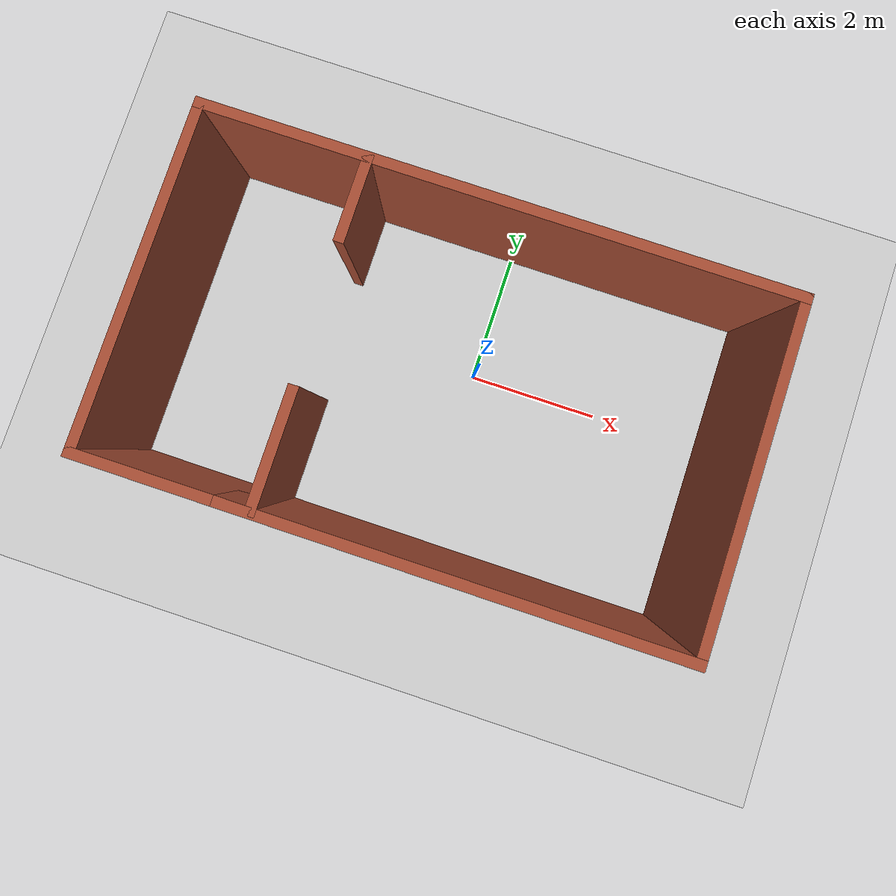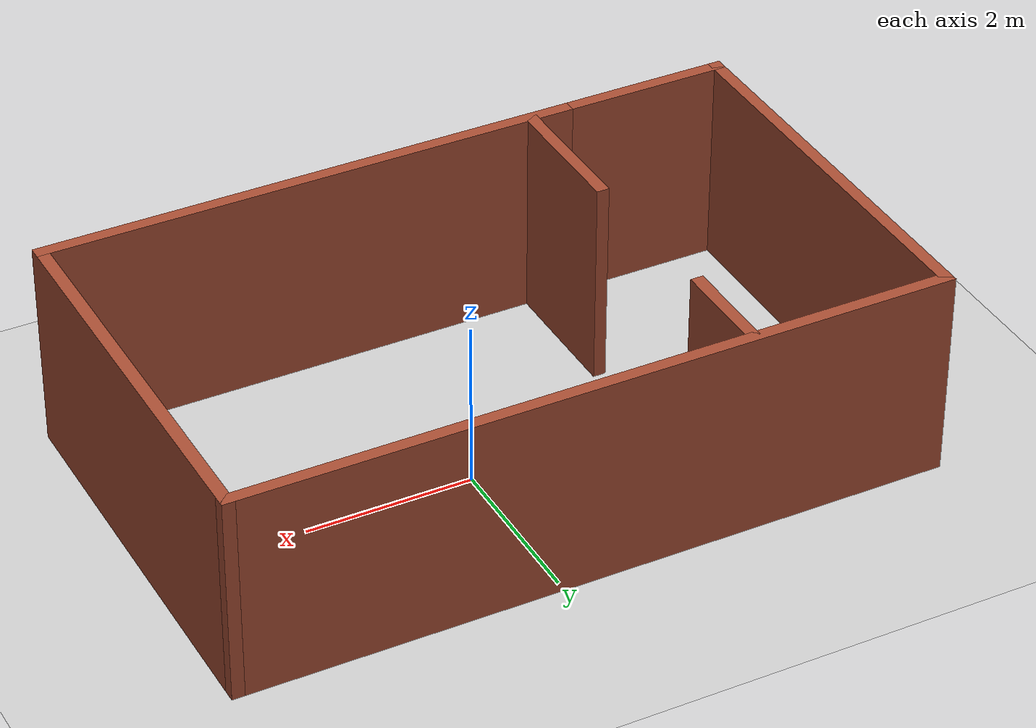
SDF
<sdf version="1.7">
 <world name="default">
  <light name="sun" type="directional">
   <pose>0 0 10 0 -0 0</pose>
   <diffuse>0.8 0.8 0.8 1</diffuse>
   <specular>0.2 0.2 0.2 1</specular>
   <attenuation>
    <range>1000</range>
    <constant>0.9</constant>
    <linear>0.01</linear>
    <quadratic>0.001</quadratic>
   </attenuation>
   <direction>-0.5 0.1 -0.9</direction>
   <spot><inner_angle>0</inner_angle><outer_angle>0</outer_angle><falloff>0</falloff></spot>
  </light>
  <model name="ground_plane">
   <static>1</static>
   <link name="link">
    <collision name="collision">
     <geometry><plane><normal>0 0 1</normal><size>100 100</size></plane></geometry>
     <surface>
      <contact><collide_bitmask>65535</collide_bitmask></contact>
      <friction><ode><mu>100</mu><mu2>50</mu2></ode></friction>
     </surface>
    </collision>
    <visual name="visual">
     <cast_shadows>0</cast_shadows>
     <geometry><plane><normal>0 0 1</normal><size>100 100</size></plane></geometry>
     <material>
      <script><uri>file://media/materials/scripts/gazebo.material</uri><name>Gazebo/Grey</name></script>
     </material>
    </visual>
   </link>
  </model>
  <gravity>0 0 -9.8</gravity>
  <magnetic_field>6e-06 2.3e-05 -4.2e-05</magnetic_field>
  <atmosphere type="adiabatic"/>
  <physics type="ode">
   <max_step_size>0.001</max_step_size>
   <real_time_factor>1</real_time_factor>
   <real_time_update_rate>1000</real_time_update_rate>
  </physics>
  <scene><ambient>0.4 0.4 0.4 1</ambient><background>0.7 0.7 0.7 1</background><shadows>1</shadows></scene>
  <spherical_coordinates>
   <surface_model>EARTH_WGS84</surface_model>
   <latitude_deg>0</latitude_deg>
   <longitude_deg>0</longitude_deg>
   <elevation>0</elevation>
   <heading_deg>0</heading_deg>
  </spherical_coordinates>
  <model name="aspirante_test2">
   <pose>-0.425 -0.355 0 0 -0 0</pose>
   <link name="Wall_10">
    <collision name="Wall_10_Collision">
     <geometry><box><size>2.15 0.15 2.5</size></box></geometry>
     <pose>0 0 1.25 0 -0 0</pose>
    </collision>
    <visual name="Wall_10_Visual">
     <pose>0 0 1.25 0 -0 0</pose>
     <geometry><box><size>2.15 0.15 2.5</size></box></geometry>
     <material>
      <script><uri>file://media/materials/scripts/gazebo.material</uri><name>Gazebo/Bricks</name></script>
      <ambient>1 1 1 1</ambient>
     </material>
     <meta><layer>0</layer></meta>
    </visual>
    <pose>-3.175 -2.425 0 0 -0 0</pose>
   </link>
   <link name="Wall_12">
    <collision name="Wall_12_Collision">
     <geometry><box><size>1.75 0.15 2.5</size></box></geometry>
     <pose>0 0 1.25 0 -0 0</pose>
    </collision>
    <visual name="Wall_12_Visual">
     <pose>0 0 1.25 0 -0 0</pose>
     <geometry><box><size>1.75 0.15 2.5</size></box></geometry>
     <material>
      <script><uri>file://media/materials/scripts/gazebo.material</uri><name>Gazebo/Bricks</name></script>
      <ambient>1 1 1 1</ambient>
     </material>
     <meta><layer>0</layer></meta>
    </visual>
    <pose>-1.74856 -1.59326 0 0 -0 1.5708</pose>
   </link>
   <link name="Wall_14">
    <collision name="Wall_14_Collision">
     <geometry><box><size>1.25 0.15 2.5</size></box></geometry>
     <pose>0 0 1.25 0 -0 0</pose>
    </collision>
    <visual name="Wall_14_Visual">
     <pose>0 0 1.25 0 -0 0</pose>
     <geometry><box><size>1.25 0.15 2.5</size></box></geometry>
     <material>
      <script><uri>file://media/materials/scripts/gazebo.material</uri><name>Gazebo/Bricks</name></script>
      <ambient>1 1 1 1</ambient>
     </material>
     <meta><layer>0</layer></meta>
    </visual>
    <pose>-1.81795 1.84477 0 0 -0 -1.5708</pose>
   </link>
   <link name="Wall_6">
    <collision name="Wall_6_Collision">
     <geometry><box><size>6.5 0.15 2.5</size></box></geometry>
     <pose>0 0 1.25 0 -0 0</pose>
    </collision>
    <visual name="Wall_6_Visual">
     <pose>0 0 1.25 0 -0 0</pose>
     <geometry><box><size>6.5 0.15 2.5</size></box></geometry>
     <material>
      <script><uri>file://media/materials/scripts/gazebo.material</uri><name>Gazebo/Bricks</name></script>
      <ambient>1 1 1 1</ambient>
     </material>
     <meta><layer>0</layer></meta>
    </visual>
    <pose>1 -2.425 0 0 -0 0</pose>
   </link>
   <link name="Wall_7">
    <collision name="Wall_7_Collision">
     <geometry><box><size>5 0.15 2.5</size></box></geometry>
     <pose>0 0 1.25 0 -0 0</pose>
    </collision>
    <visual name="Wall_7_Visual">
     <pose>0 0 1.25 0 -0 0</pose>
     <geometry><box><size>5 0.15 2.5</size></box></geometry>
     <material>
      <script><uri>file://media/materials/scripts/gazebo.material</uri><name>Gazebo/Bricks</name></script>
      <ambient>1 1 1 1</ambient>
     </material>
     <meta><layer>0</layer></meta>
    </visual>
    <pose>4.175 0 0 0 -0 1.5708</pose>
   </link>
   <link name="Wall_8">
    <collision name="Wall_8_Collision">
     <geometry><box><size>8.5 0.15 2.5</size></box></geometry>
     <pose>0 0 1.25 0 -0 0</pose>
    </collision>
    <visual name="Wall_8_Visual">
     <pose>0 0 1.25 0 -0 0</pose>
     <geometry><box><size>8.5 0.15 2.5</size></box></geometry>
     <material>
      <script><uri>file://media/materials/scripts/gazebo.material</uri><name>Gazebo/Bricks</name></script>
      <ambient>1 1 1 1</ambient>
     </material>
     <meta><layer>0</layer></meta>
    </visual>
    <pose>-0 2.425 0 0 -0 3.14159</pose>
   </link>
   <link name="Wall_9">
    <collision name="Wall_9_Collision">
     <geometry><box><size>5 0.15 2.5</size></box></geometry>
     <pose>0 0 1.25 0 -0 0</pose>
    </collision>
    <visual name="Wall_9_Visual">
     <pose>0 0 1.25 0 -0 0</pose>
     <geometry><box><size>5 0.15 2.5</size></box></geometry>
     <material>
      <script><uri>file://media/materials/scripts/gazebo.material</uri><name>Gazebo/Bricks</name></script>
      <ambient>1 1 1 1</ambient>
     </material>
     <meta><layer>0</layer></meta>
    </visual>
    <pose>-4.175 0 0 0 -0 -1.5708</pose>
   </link>
   <static>1</static>
  </model>
 </world>
</sdf>
